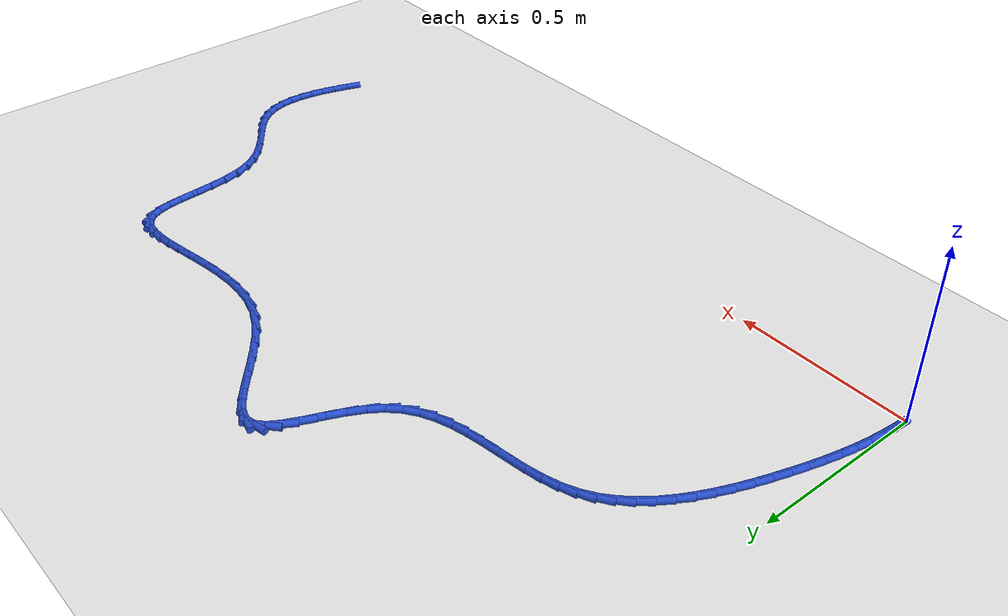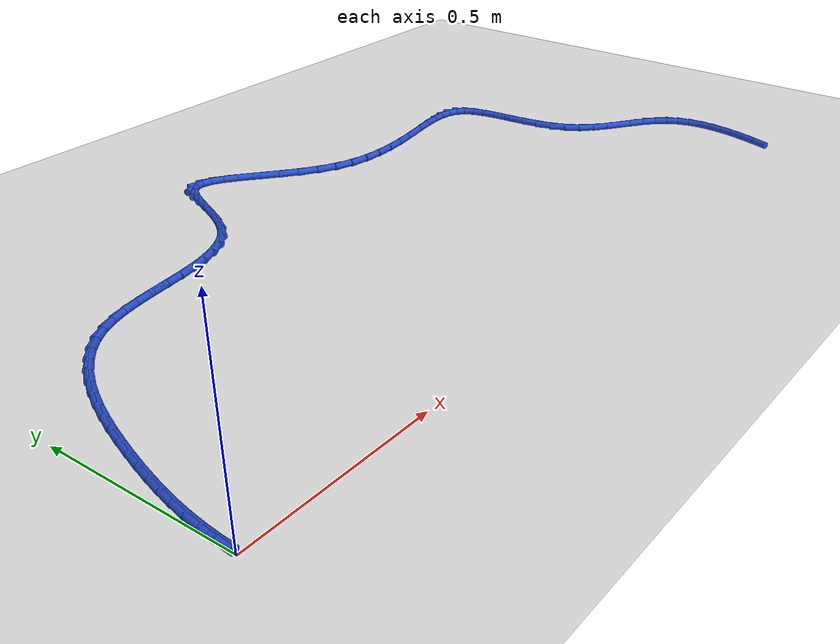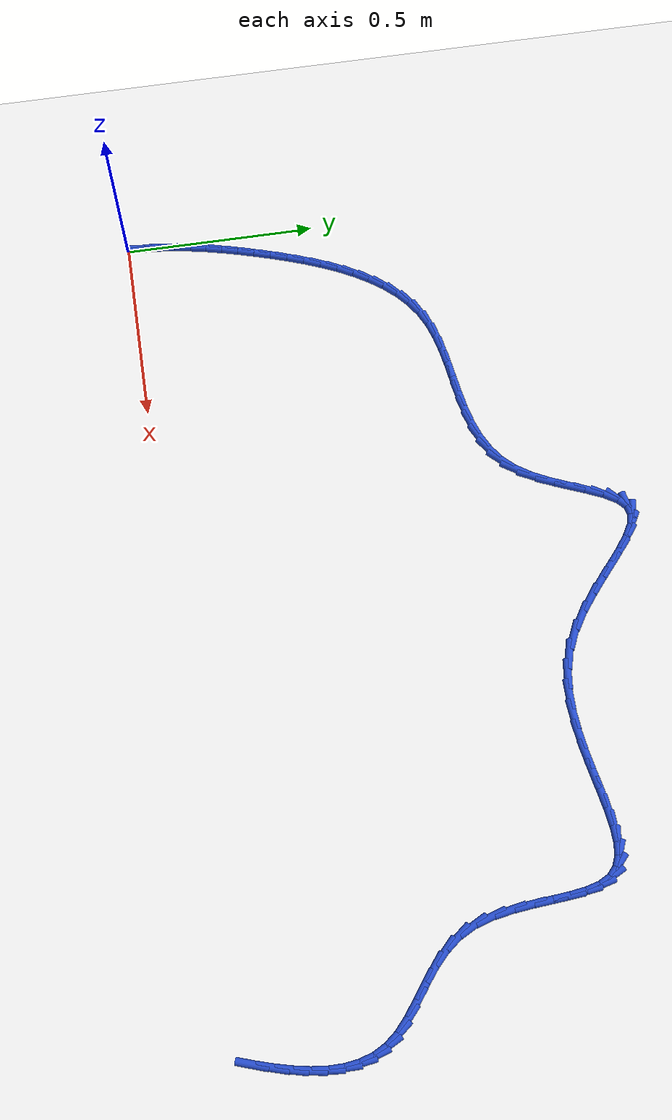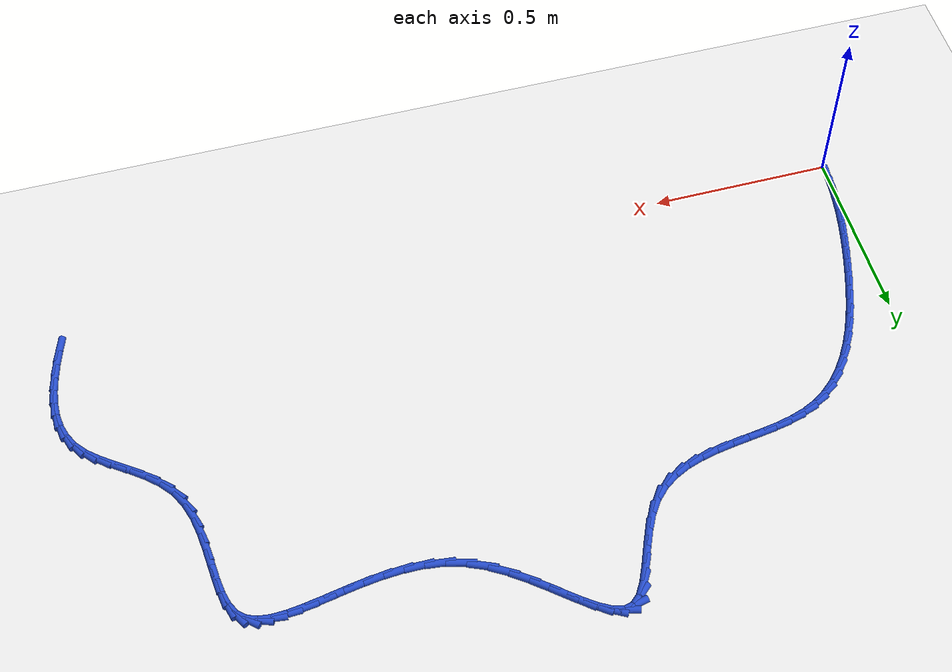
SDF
<sdf version="1.6">
 <world name="default">
  <model name="ground_plane">
   <static>1</static>
   <link name="link">
    <collision name="collision">
     <geometry><plane><normal>0 0 1</normal><size>100 100</size></plane></geometry>
     <surface><friction><ode><mu>100</mu><mu2>50</mu2></ode></friction></surface>
    </collision>
    <visual name="visual">
     <cast_shadows>0</cast_shadows>
     <geometry><plane><normal>0 0 1</normal><size>100 100</size></plane></geometry>
     <material>
      <script><uri>file://media/materials/scripts/gazebo.material</uri><name>Gazebo/WhiteGlow</name></script>
     </material>
    </visual>
   </link>
  </model>
  <model name="line">
   <link name="link_1">
    <pose>0.001882932050623325 0.04342792343694653 0.01 0 1.57 1.4830346264562566</pose>
    <collision name="collision">
     <geometry><cylinder><radius>0.01</radius><length>0.08</length></cylinder></geometry>
    </collision>
    <visual name="visual">
     <material>
      <script><name>Gazebo/Blue</name><uri>file://media/materials/scripts/gazebo.material</uri></script>
     </material>
     <geometry><cylinder><radius>0.01</radius><length>0.08</length></cylinder></geometry>
    </visual>
   </link>
   <link name="link_2">
    <pose>0.005660563875606679 0.08636155212213174 0.01 0 1.57 1.441057252625302</pose>
    <collision name="collision">
     <geometry><cylinder><radius>0.01</radius><length>0.08</length></cylinder></geometry>
    </collision>
    <visual name="visual">
     <material>
      <script><name>Gazebo/Blue</name><uri>file://media/materials/scripts/gazebo.material</uri></script>
     </material>
     <geometry><cylinder><radius>0.01</radius><length>0.08</length></cylinder></geometry>
    </visual>
   </link>
   <link name="link_3">
    <pose>0.01121829659993773 0.12895870108899557 0.01 0 1.57 1.4021291156189073</pose>
    <collision name="collision">
     <geometry><cylinder><radius>0.01</radius><length>0.08</length></cylinder></geometry>
    </collision>
    <visual name="visual">
     <material>
      <script><name>Gazebo/Blue</name><uri>file://media/materials/scripts/gazebo.material</uri></script>
     </material>
     <geometry><cylinder><radius>0.01</radius><length>0.08</length></cylinder></geometry>
    </visual>
   </link>
   <link name="link_4">
    <pose>0.018441531348604167 0.17137718537097799 0.01 0 1.57 1.3667282829001004</pose>
    <collision name="collision">
     <geometry><cylinder><radius>0.01</radius><length>0.08</length></cylinder></geometry>
    </collision>
    <visual name="visual">
     <material>
      <script><name>Gazebo/Blue</name><uri>file://media/materials/scripts/gazebo.material</uri></script>
     </material>
     <geometry><cylinder><radius>0.01</radius><length>0.08</length></cylinder></geometry>
    </visual>
   </link>
   <link name="link_5">
    <pose>0.02721566924659366 0.21377482000151873 0.01 0 1.57 1.3352038154695058</pose>
    <collision name="collision">
     <geometry><cylinder><radius>0.01</radius><length>0.08</length></cylinder></geometry>
    </collision>
    <visual name="visual">
     <material>
      <script><name>Gazebo/Blue</name><uri>file://media/materials/scripts/gazebo.material</uri></script>
     </material>
     <geometry><cylinder><radius>0.01</radius><length>0.08</length></cylinder></geometry>
    </visual>
   </link>
   <link name="link_6">
    <pose>0.037426111418893904 0.2563094200140577 0.01 0 1.57 1.307776329983313</pose>
    <collision name="collision">
     <geometry><cylinder><radius>0.01</radius><length>0.08</length></cylinder></geometry>
    </collision>
    <visual name="visual">
     <material>
      <script><name>Gazebo/Blue</name><uri>file://media/materials/scripts/gazebo.material</uri></script>
     </material>
     <geometry><cylinder><radius>0.01</radius><length>0.08</length></cylinder></geometry>
    </visual>
   </link>
   <link name="link_7">
    <pose>0.04895825899049258 0.2991388004420349 0.01 0 1.57 1.2845479591983004</pose>
    <collision name="collision">
     <geometry><cylinder><radius>0.01</radius><length>0.08</length></cylinder></geometry>
    </collision>
    <visual name="visual">
     <material>
      <script><name>Gazebo/Blue</name><uri>file://media/materials/scripts/gazebo.material</uri></script>
     </material>
     <geometry><cylinder><radius>0.01</radius><length>0.08</length></cylinder></geometry>
    </visual>
   </link>
   <link name="link_8">
    <pose>0.06169751308637738 0.3424207763188901 0.01 0 1.57 1.2651666941944375</pose>
    <collision name="collision">
     <geometry><cylinder><radius>0.01</radius><length>0.08</length></cylinder></geometry>
    </collision>
    <visual name="visual">
     <material>
      <script><name>Gazebo/Blue</name><uri>file://media/materials/scripts/gazebo.material</uri></script>
     </material>
     <geometry><cylinder><radius>0.01</radius><length>0.08</length></cylinder></geometry>
    </visual>
   </link>
   <link name="link_9">
    <pose>0.07553934760905774 0.3862913273354509 0.01 0 1.57 1.2435836410821643</pose>
    <collision name="collision">
     <geometry><cylinder><radius>0.01</radius><length>0.08</length></cylinder></geometry>
    </collision>
    <visual name="visual">
     <material>
      <script><name>Gazebo/Blue</name><uri>file://media/materials/scripts/gazebo.material</uri></script>
     </material>
     <geometry><cylinder><radius>0.01</radius><length>0.08</length></cylinder></geometry>
    </visual>
   </link>
   <link name="link_10">
    <pose>0.09054993458861518 0.4305164009753659 0.01 0 1.57 1.2145333849777742</pose>
    <collision name="collision">
     <geometry><cylinder><radius>0.01</radius><length>0.08</length></cylinder></geometry>
    </collision>
    <visual name="visual">
     <material>
      <script><name>Gazebo/Blue</name><uri>file://media/materials/scripts/gazebo.material</uri></script>
     </material>
     <geometry><cylinder><radius>0.01</radius><length>0.08</length></cylinder></geometry>
    </visual>
   </link>
   <link name="link_11">
    <pose>0.1069378821469445 0.47455317776516853 0.01 0 1.57 1.1772221785938286</pose>
    <collision name="collision">
     <geometry><cylinder><radius>0.01</radius><length>0.08</length></cylinder></geometry>
    </collision>
    <visual name="visual">
     <material>
      <script><name>Gazebo/Blue</name><uri>file://media/materials/scripts/gazebo.material</uri></script>
     </material>
     <geometry><cylinder><radius>0.01</radius><length>0.08</length></cylinder></geometry>
    </visual>
   </link>
   <link name="link_12">
    <pose>0.12491616066155674 0.5178493819175072 0.01 0 1.57 1.130655671403392</pose>
    <collision name="collision">
     <geometry><cylinder><radius>0.01</radius><length>0.08</length></cylinder></geometry>
    </collision>
    <visual name="visual">
     <material>
      <script><name>Gazebo/Blue</name><uri>file://media/materials/scripts/gazebo.material</uri></script>
     </material>
     <geometry><cylinder><radius>0.01</radius><length>0.08</length></cylinder></geometry>
    </visual>
   </link>
   <link name="link_13">
    <pose>0.14469774050996284 0.5598527376450301 0.01 0 1.57 1.0734984498851592</pose>
    <collision name="collision">
     <geometry><cylinder><radius>0.01</radius><length>0.08</length></cylinder></geometry>
    </collision>
    <visual name="visual">
     <material>
      <script><name>Gazebo/Blue</name><uri>file://media/materials/scripts/gazebo.material</uri></script>
     </material>
     <geometry><cylinder><radius>0.01</radius><length>0.08</length></cylinder></geometry>
    </visual>
   </link>
   <link name="link_14">
    <pose>0.1664955920696738 0.6000109691603858 0.01 0 1.57 1.0041147316822503</pose>
    <collision name="collision">
     <geometry><cylinder><radius>0.01</radius><length>0.08</length></cylinder></geometry>
    </collision>
    <visual name="visual">
     <material>
      <script><name>Gazebo/Blue</name><uri>file://media/materials/scripts/gazebo.material</uri></script>
     </material>
     <geometry><cylinder><radius>0.01</radius><length>0.08</length></cylinder></geometry>
    </visual>
   </link>
   <link name="link_15">
    <pose>0.19052268571820058 0.6377718006762223 0.01 0 1.57 0.920692338920106</pose>
    <collision name="collision">
     <geometry><cylinder><radius>0.01</radius><length>0.08</length></cylinder></geometry>
    </collision>
    <visual name="visual">
     <material>
      <script><name>Gazebo/Blue</name><uri>file://media/materials/scripts/gazebo.material</uri></script>
     </material>
     <geometry><cylinder><radius>0.01</radius><length>0.08</length></cylinder></geometry>
    </visual>
   </link>
   <link name="link_16">
    <pose>0.21699199183305423 0.6725829564051883 0.01 0 1.57 0.8215330431041581</pose>
    <collision name="collision">
     <geometry><cylinder><radius>0.01</radius><length>0.08</length></cylinder></geometry>
    </collision>
    <visual name="visual">
     <material>
      <script><name>Gazebo/Blue</name><uri>file://media/materials/scripts/gazebo.material</uri></script>
     </material>
     <geometry><cylinder><radius>0.01</radius><length>0.08</length></cylinder></geometry>
    </visual>
   </link>
   <link name="link_17">
    <pose>0.24611648079174578 0.7038921605599324 0.01 0 1.57 0.7056041369689432</pose>
    <collision name="collision">
     <geometry><cylinder><radius>0.01</radius><length>0.08</length></cylinder></geometry>
    </collision>
    <visual name="visual">
     <material>
      <script><name>Gazebo/Blue</name><uri>file://media/materials/scripts/gazebo.material</uri></script>
     </material>
     <geometry><cylinder><radius>0.01</radius><length>0.08</length></cylinder></geometry>
    </visual>
   </link>
   <link name="link_18">
    <pose>0.278109122971786 0.7311471373531022 0.01 0 1.57 0.5733734565252111</pose>
    <collision name="collision">
     <geometry><cylinder><radius>0.01</radius><length>0.08</length></cylinder></geometry>
    </collision>
    <visual name="visual">
     <material>
      <script><name>Gazebo/Blue</name><uri>file://media/materials/scripts/gazebo.material</uri></script>
     </material>
     <geometry><cylinder><radius>0.01</radius><length>0.08</length></cylinder></geometry>
    </visual>
   </link>
   <link name="link_19">
    <pose>0.313182888750686 0.7537956109973463 0.01 0 1.57 0.43009340562347703</pose>
    <collision name="collision">
     <geometry><cylinder><radius>0.01</radius><length>0.08</length></cylinder></geometry>
    </collision>
    <visual name="visual">
     <material>
      <script><name>Gazebo/Blue</name><uri>file://media/materials/scripts/gazebo.material</uri></script>
     </material>
     <geometry><cylinder><radius>0.01</radius><length>0.08</length></cylinder></geometry>
    </visual>
   </link>
   <link name="link_20">
    <pose>0.35150315892209255 0.7713744248897481 0.01 0 1.57 0.3066090634197765</pose>
    <collision name="collision">
     <geometry><cylinder><radius>0.01</radius><length>0.08</length></cylinder></geometry>
    </collision>
    <visual name="visual">
     <material>
      <script><name>Gazebo/Blue</name><uri>file://media/materials/scripts/gazebo.material</uri></script>
     </material>
     <geometry><cylinder><radius>0.01</radius><length>0.08</length></cylinder></geometry>
    </visual>
   </link>
   <link name="link_21">
    <pose>0.39270266857234926 0.7844178875694007 0.01 0 1.57 0.21929909739808087</pose>
    <collision name="collision">
     <geometry><cylinder><radius>0.01</radius><length>0.08</length></cylinder></geometry>
    </collision>
    <visual name="visual">
     <material>
      <script><name>Gazebo/Blue</name><uri>file://media/materials/scripts/gazebo.material</uri></script>
     </material>
     <geometry><cylinder><radius>0.01</radius><length>0.08</length></cylinder></geometry>
    </visual>
   </link>
   <link name="link_22">
    <pose>0.43608003815203483 0.7940859912109586 0.01 0 1.57 0.16487985646915165</pose>
    <collision name="collision">
     <geometry><cylinder><radius>0.01</radius><length>0.08</length></cylinder></geometry>
    </collision>
    <visual name="visual">
     <material>
      <script><name>Gazebo/Blue</name><uri>file://media/materials/scripts/gazebo.material</uri></script>
     </material>
     <geometry><cylinder><radius>0.01</radius><length>0.08</length></cylinder></geometry>
    </visual>
   </link>
   <link name="link_23">
    <pose>0.4809287323590615 0.8015483829689165 0.01 0 1.57 0.13996535813844757</pose>
    <collision name="collision">
     <geometry><cylinder><radius>0.01</radius><length>0.08</length></cylinder></geometry>
    </collision>
    <visual name="visual">
     <material>
      <script><name>Gazebo/Blue</name><uri>file://media/materials/scripts/gazebo.material</uri></script>
     </material>
     <geometry><cylinder><radius>0.01</radius><length>0.08</length></cylinder></geometry>
    </visual>
   </link>
   <link name="link_24">
    <pose>0.5265422158913406 0.8079747099977692 0.01 0 1.57 0.1426560413136113</pose>
    <collision name="collision">
     <geometry><cylinder><radius>0.01</radius><length>0.08</length></cylinder></geometry>
    </collision>
    <visual name="visual">
     <material>
      <script><name>Gazebo/Blue</name><uri>file://media/materials/scripts/gazebo.material</uri></script>
     </material>
     <geometry><cylinder><radius>0.01</radius><length>0.08</length></cylinder></geometry>
    </visual>
   </link>
   <link name="link_25">
    <pose>0.5722139534467843 0.8145346194520118 0.01 0 1.57 0.1729015719749586</pose>
    <collision name="collision">
     <geometry><cylinder><radius>0.01</radius><length>0.08</length></cylinder></geometry>
    </collision>
    <visual name="visual">
     <material>
      <script><name>Gazebo/Blue</name><uri>file://media/materials/scripts/gazebo.material</uri></script>
     </material>
     <geometry><cylinder><radius>0.01</radius><length>0.08</length></cylinder></geometry>
    </visual>
   </link>
   <link name="link_26">
    <pose>0.6172374097233042 0.8223977584861387 0.01 0 1.57 0.2324147633976279</pose>
    <collision name="collision">
     <geometry><cylinder><radius>0.01</radius><length>0.08</length></cylinder></geometry>
    </collision>
    <visual name="visual">
     <material>
      <script><name>Gazebo/Blue</name><uri>file://media/materials/scripts/gazebo.material</uri></script>
     </material>
     <geometry><cylinder><radius>0.01</radius><length>0.08</length></cylinder></geometry>
    </visual>
   </link>
   <link name="link_27">
    <pose>0.6609060494188117 0.8327337742546448 0.01 0 1.57 0.3241160413838412</pose>
    <collision name="collision">
     <geometry><cylinder><radius>0.01</radius><length>0.08</length></cylinder></geometry>
    </collision>
    <visual name="visual">
     <material>
      <script><name>Gazebo/Blue</name><uri>file://media/materials/scripts/gazebo.material</uri></script>
     </material>
     <geometry><cylinder><radius>0.01</radius><length>0.08</length></cylinder></geometry>
    </visual>
   </link>
   <link name="link_28">
    <pose>0.7025133372312192 0.8467123139120253 0.01 0 1.57 0.45060817402634884</pose>
    <collision name="collision">
     <geometry><cylinder><radius>0.01</radius><length>0.08</length></cylinder></geometry>
    </collision>
    <visual name="visual">
     <material>
      <script><name>Gazebo/Blue</name><uri>file://media/materials/scripts/gazebo.material</uri></script>
     </material>
     <geometry><cylinder><radius>0.01</radius><length>0.08</length></cylinder></geometry>
    </visual>
   </link>
   <link name="link_29">
    <pose>0.7413527378584385 0.865503024612775 0.01 0 1.57 0.6110493484713455</pose>
    <collision name="collision">
     <geometry><cylinder><radius>0.01</radius><length>0.08</length></cylinder></geometry>
    </collision>
    <visual name="visual">
     <material>
      <script><name>Gazebo/Blue</name><uri>file://media/materials/scripts/gazebo.material</uri></script>
     </material>
     <geometry><cylinder><radius>0.01</radius><length>0.08</length></cylinder></geometry>
    </visual>
   </link>
   <link name="link_30">
    <pose>0.7767177159983806 0.8902755535113882 0.01 0 1.57 0.7971231399385907</pose>
    <collision name="collision">
     <geometry><cylinder><radius>0.01</radius><length>0.08</length></cylinder></geometry>
    </collision>
    <visual name="visual">
     <material>
      <script><name>Gazebo/Blue</name><uri>file://media/materials/scripts/gazebo.material</uri></script>
     </material>
     <geometry><cylinder><radius>0.01</radius><length>0.08</length></cylinder></geometry>
    </visual>
   </link>
   <link name="link_31">
    <pose>0.8079017363489582 0.9221995477623603 0.01 0 1.57 0.9794834374040592</pose>
    <collision name="collision">
     <geometry><cylinder><radius>0.01</radius><length>0.08</length></cylinder></geometry>
    </collision>
    <visual name="visual">
     <material>
      <script><name>Gazebo/Blue</name><uri>file://media/materials/scripts/gazebo.material</uri></script>
     </material>
     <geometry><cylinder><radius>0.01</radius><length>0.08</length></cylinder></geometry>
    </visual>
   </link>
   <link name="link_32">
    <pose>0.8344759133729378 0.9617763284519439 0.01 0 1.57 1.0992245112673753</pose>
    <collision name="collision">
     <geometry><cylinder><radius>0.01</radius><length>0.08</length></cylinder></geometry>
    </collision>
    <visual name="visual">
     <material>
      <script><name>Gazebo/Blue</name><uri>file://media/materials/scripts/gazebo.material</uri></script>
     </material>
     <geometry><cylinder><radius>0.01</radius><length>0.08</length></cylinder></geometry>
    </visual>
   </link>
   <link name="link_33">
    <pose>0.8572704856351552 1.0064764002671658 0.01 0 1.57 1.1604379181783198</pose>
    <collision name="collision">
     <geometry><cylinder><radius>0.01</radius><length>0.08</length></cylinder></geometry>
    </collision>
    <visual name="visual">
     <material>
      <script><name>Gazebo/Blue</name><uri>file://media/materials/scripts/gazebo.material</uri></script>
     </material>
     <geometry><cylinder><radius>0.01</radius><length>0.08</length></cylinder></geometry>
    </visual>
   </link>
   <link name="link_34">
    <pose>0.877472439163415 1.0529115470911425 0.01 0 1.57 1.1733975695237424</pose>
    <collision name="collision">
     <geometry><cylinder><radius>0.01</radius><length>0.08</length></cylinder></geometry>
    </collision>
    <visual name="visual">
     <material>
      <script><name>Gazebo/Blue</name><uri>file://media/materials/scripts/gazebo.material</uri></script>
     </material>
     <geometry><cylinder><radius>0.01</radius><length>0.08</length></cylinder></geometry>
    </visual>
   </link>
   <link name="link_35">
    <pose>0.8962687830290101 1.0976934973393997 0.01 0 1.57 1.133504327110469</pose>
    <collision name="collision">
     <geometry><cylinder><radius>0.01</radius><length>0.08</length></cylinder></geometry>
    </collision>
    <visual name="visual">
     <material>
      <script><name>Gazebo/Blue</name><uri>file://media/materials/scripts/gazebo.material</uri></script>
     </material>
     <geometry><cylinder><radius>0.01</radius><length>0.08</length></cylinder></geometry>
    </visual>
   </link>
   <link name="link_36">
    <pose>0.9148465263032342 1.1374339794274633 0.01 0 1.57 1.012726847234206</pose>
    <collision name="collision">
     <geometry><cylinder><radius>0.01</radius><length>0.08</length></cylinder></geometry>
    </collision>
    <visual name="visual">
     <material>
      <script><name>Gazebo/Blue</name><uri>file://media/materials/scripts/gazebo.material</uri></script>
     </material>
     <geometry><cylinder><radius>0.01</radius><length>0.08</length></cylinder></geometry>
    </visual>
   </link>
   <link name="link_37">
    <pose>0.9343926780573804 1.1687447217708578 0.01 0 1.57 0.7318304570410479</pose>
    <collision name="collision">
     <geometry><cylinder><radius>0.01</radius><length>0.08</length></cylinder></geometry>
    </collision>
    <visual name="visual">
     <material>
      <script><name>Gazebo/Blue</name><uri>file://media/materials/scripts/gazebo.material</uri></script>
     </material>
     <geometry><cylinder><radius>0.01</radius><length>0.08</length></cylinder></geometry>
    </visual>
   </link>
   <link name="link_38">
    <pose>0.9560942400626891 1.1882374851318345 0.01 0 1.57 0.21242757763754652</pose>
    <collision name="collision">
     <geometry><cylinder><radius>0.01</radius><length>0.08</length></cylinder></geometry>
    </collision>
    <visual name="visual">
     <material>
      <script><name>Gazebo/Blue</name><uri>file://media/materials/scripts/gazebo.material</uri></script>
     </material>
     <geometry><cylinder><radius>0.01</radius><length>0.08</length></cylinder></geometry>
    </visual>
   </link>
   <link name="link_39">
    <pose>0.9808982636227594 1.1935872572387711 0.01 0 1.57 -0.25374595940826594</pose>
    <collision name="collision">
     <geometry><cylinder><radius>0.01</radius><length>0.08</length></cylinder></geometry>
    </collision>
    <visual name="visual">
     <material>
      <script><name>Gazebo/Blue</name><uri>file://media/materials/scripts/gazebo.material</uri></script>
     </material>
     <geometry><cylinder><radius>0.01</radius><length>0.08</length></cylinder></geometry>
    </visual>
   </link>
   <link name="link_40">
    <pose>1.0088803375806383 1.1863304993863466 0.01 0 1.57 -0.5121843927509631</pose>
    <collision name="collision">
     <geometry><cylinder><radius>0.01</radius><length>0.08</length></cylinder></geometry>
    </collision>
    <visual name="visual">
     <material>
      <script><name>Gazebo/Blue</name><uri>file://media/materials/scripts/gazebo.material</uri></script>
     </material>
     <geometry><cylinder><radius>0.01</radius><length>0.08</length></cylinder></geometry>
    </visual>
   </link>
   <link name="link_41">
    <pose>1.0399182711945005 1.1688800395212853 0.01 0 1.57 -0.6388245669623184</pose>
    <collision name="collision">
     <geometry><cylinder><radius>0.01</radius><length>0.08</length></cylinder></geometry>
    </collision>
    <visual name="visual">
     <material>
      <script><name>Gazebo/Blue</name><uri>file://media/materials/scripts/gazebo.material</uri></script>
     </material>
     <geometry><cylinder><radius>0.01</radius><length>0.08</length></cylinder></geometry>
    </visual>
   </link>
   <link name="link_42">
    <pose>1.0738898737225218 1.1436487055903097 0.01 0 1.57 -0.6938843102755509</pose>
    <collision name="collision">
     <geometry><cylinder><radius>0.01</radius><length>0.08</length></cylinder></geometry>
    </collision>
    <visual name="visual">
     <material>
      <script><name>Gazebo/Blue</name><uri>file://media/materials/scripts/gazebo.material</uri></script>
     </material>
     <geometry><cylinder><radius>0.01</radius><length>0.08</length></cylinder></geometry>
    </visual>
   </link>
   <link name="link_43">
    <pose>1.1106729544228775 1.1130493255401448 0.01 0 1.57 -0.7045394406214696</pose>
    <collision name="collision">
     <geometry><cylinder><radius>0.01</radius><length>0.08</length></cylinder></geometry>
    </collision>
    <visual name="visual">
     <material>
      <script><name>Gazebo/Blue</name><uri>file://media/materials/scripts/gazebo.material</uri></script>
     </material>
     <geometry><cylinder><radius>0.01</radius><length>0.08</length></cylinder></geometry>
    </visual>
   </link>
   <link name="link_44">
    <pose>1.1501453225537421 1.079494727317513 0.01 0 1.57 -0.6814551570017929</pose>
    <collision name="collision">
     <geometry><cylinder><radius>0.01</radius><length>0.08</length></cylinder></geometry>
    </collision>
    <visual name="visual">
     <material>
      <script><name>Gazebo/Blue</name><uri>file://media/materials/scripts/gazebo.material</uri></script>
     </material>
     <geometry><cylinder><radius>0.01</radius><length>0.08</length></cylinder></geometry>
    </visual>
   </link>
   <link name="link_45">
    <pose>1.1921847873732925 1.0453977388691387 0.01 0 1.57 -0.6269453539872679</pose>
    <collision name="collision">
     <geometry><cylinder><radius>0.01</radius><length>0.08</length></cylinder></geometry>
    </collision>
    <visual name="visual">
     <material>
      <script><name>Gazebo/Blue</name><uri>file://media/materials/scripts/gazebo.material</uri></script>
     </material>
     <geometry><cylinder><radius>0.01</radius><length>0.08</length></cylinder></geometry>
    </visual>
   </link>
   <link name="link_46">
    <pose>1.2366691581397022 1.0131711881417453 0.01 0 1.57 -0.5382021097787669</pose>
    <collision name="collision">
     <geometry><cylinder><radius>0.01</radius><length>0.08</length></cylinder></geometry>
    </collision>
    <visual name="visual">
     <material>
      <script><name>Gazebo/Blue</name><uri>file://media/materials/scripts/gazebo.material</uri></script>
     </material>
     <geometry><cylinder><radius>0.01</radius><length>0.08</length></cylinder></geometry>
    </visual>
   </link>
   <link name="link_47">
    <pose>1.283476244111149 0.9852279030820568 0.01 0 1.57 -0.4091280359965647</pose>
    <collision name="collision">
     <geometry><cylinder><radius>0.01</radius><length>0.08</length></cylinder></geometry>
    </collision>
    <visual name="visual">
     <material>
      <script><name>Gazebo/Blue</name><uri>file://media/materials/scripts/gazebo.material</uri></script>
     </material>
     <geometry><cylinder><radius>0.01</radius><length>0.08</length></cylinder></geometry>
    </visual>
   </link>
   <link name="link_48">
    <pose>1.3324835380963123 0.9639785895958195 0.01 0 1.57 -0.25166430734247897</pose>
    <collision name="collision">
     <geometry><cylinder><radius>0.01</radius><length>0.08</length></cylinder></geometry>
    </collision>
    <visual name="visual">
     <material>
      <script><name>Gazebo/Blue</name><uri>file://media/materials/scripts/gazebo.material</uri></script>
     </material>
     <geometry><cylinder><radius>0.01</radius><length>0.08</length></cylinder></geometry>
    </visual>
   </link>
   <link name="link_49">
    <pose>1.383426335216906 0.9508804070509274 0.01 0 1.57 -0.11327274444445434</pose>
    <collision name="collision">
     <geometry><cylinder><radius>0.01</radius><length>0.08</length></cylinder></geometry>
    </collision>
    <visual name="visual">
     <material>
      <script><name>Gazebo/Blue</name><uri>file://media/materials/scripts/gazebo.material</uri></script>
     </material>
     <geometry><cylinder><radius>0.01</radius><length>0.08</length></cylinder></geometry>
    </visual>
   </link>
   <link name="link_50">
    <pose>1.4356740093759344 0.9449367272842448 0.01 0 1.57 -0.0033122318061383446</pose>
    <collision name="collision">
     <geometry><cylinder><radius>0.01</radius><length>0.08</length></cylinder></geometry>
    </collision>
    <visual name="visual">
     <material>
      <script><name>Gazebo/Blue</name><uri>file://media/materials/scripts/gazebo.material</uri></script>
     </material>
     <geometry><cylinder><radius>0.01</radius><length>0.08</length></cylinder></geometry>
    </visual>
   </link>
   <link name="link_51">
    <pose>1.4885378811504482 0.9447616292464307 0.01 0 1.57 0.07953355903179206</pose>
    <collision name="collision">
     <geometry><cylinder><radius>0.01</radius><length>0.08</length></cylinder></geometry>
    </collision>
    <visual name="visual">
     <material>
      <script><name>Gazebo/Blue</name><uri>file://media/materials/scripts/gazebo.material</uri></script>
     </material>
     <geometry><cylinder><radius>0.01</radius><length>0.08</length></cylinder></geometry>
    </visual>
   </link>
   <link name="link_52">
    <pose>1.5413292711175002 0.9489691918881434 0.01 0 1.57 0.13758893823305643</pose>
    <collision name="collision">
     <geometry><cylinder><radius>0.01</radius><length>0.08</length></cylinder></geometry>
    </collision>
    <visual name="visual">
     <material>
      <script><name>Gazebo/Blue</name><uri>file://media/materials/scripts/gazebo.material</uri></script>
     </material>
     <geometry><cylinder><radius>0.01</radius><length>0.08</length></cylinder></geometry>
    </visual>
   </link>
   <link name="link_53">
    <pose>1.5933594998541412 0.9561734941600414 0.01 0 1.57 0.1725464159879727</pose>
    <collision name="collision">
     <geometry><cylinder><radius>0.01</radius><length>0.08</length></cylinder></geometry>
    </collision>
    <visual name="visual">
     <material>
      <script><name>Gazebo/Blue</name><uri>file://media/materials/scripts/gazebo.material</uri></script>
     </material>
     <geometry><cylinder><radius>0.01</radius><length>0.08</length></cylinder></geometry>
    </visual>
   </link>
   <link name="link_54">
    <pose>1.6439398879374234 0.9649886150127829 0.01 0 1.57 0.1844936514445107</pose>
    <collision name="collision">
     <geometry><cylinder><radius>0.01</radius><length>0.08</length></cylinder></geometry>
    </collision>
    <visual name="visual">
     <material>
      <script><name>Gazebo/Blue</name><uri>file://media/materials/scripts/gazebo.material</uri></script>
     </material>
     <geometry><cylinder><radius>0.01</radius><length>0.08</length></cylinder></geometry>
    </visual>
   </link>
   <link name="link_55">
    <pose>1.6923817559443992 0.9740286333970268 0.01 0 1.57 0.171041702690649</pose>
    <collision name="collision">
     <geometry><cylinder><radius>0.01</radius><length>0.08</length></cylinder></geometry>
    </collision>
    <visual name="visual">
     <material>
      <script><name>Gazebo/Blue</name><uri>file://media/materials/scripts/gazebo.material</uri></script>
     </material>
     <geometry><cylinder><radius>0.01</radius><length>0.08</length></cylinder></geometry>
    </visual>
   </link>
   <link name="link_56">
    <pose>1.7379964244521195 0.9819076282634314 0.01 0 1.57 0.12598485674907975</pose>
    <collision name="collision">
     <geometry><cylinder><radius>0.01</radius><length>0.08</length></cylinder></geometry>
    </collision>
    <visual name="visual">
     <material>
      <script><name>Gazebo/Blue</name><uri>file://media/materials/scripts/gazebo.material</uri></script>
     </material>
     <geometry><cylinder><radius>0.01</radius><length>0.08</length></cylinder></geometry>
    </visual>
   </link>
   <link name="link_57">
    <pose>1.7800952140376363 0.9872396785626548 0.01 0 1.57 0.03690665576698272</pose>
    <collision name="collision">
     <geometry><cylinder><radius>0.01</radius><length>0.08</length></cylinder></geometry>
    </collision>
    <visual name="visual">
     <material>
      <script><name>Gazebo/Blue</name><uri>file://media/materials/scripts/gazebo.material</uri></script>
     </material>
     <geometry><cylinder><radius>0.01</radius><length>0.08</length></cylinder></geometry>
    </visual>
   </link>
   <link name="link_58">
    <pose>1.8179894452780023 0.9886388632453561 0.01 0 1.57 -0.11821842154475909</pose>
    <collision name="collision">
     <geometry><cylinder><radius>0.01</radius><length>0.08</length></cylinder></geometry>
    </collision>
    <visual name="visual">
     <material>
      <script><name>Gazebo/Blue</name><uri>file://media/materials/scripts/gazebo.material</uri></script>
     </material>
     <geometry><cylinder><radius>0.01</radius><length>0.08</length></cylinder></geometry>
    </visual>
   </link>
   <link name="link_59">
    <pose>1.850990438750268 0.9847192612621934 0.01 0 1.57 -0.36966582225953754</pose>
    <collision name="collision">
     <geometry><cylinder><radius>0.01</radius><length>0.08</length></cylinder></geometry>
    </collision>
    <visual name="visual">
     <material>
      <script><name>Gazebo/Blue</name><uri>file://media/materials/scripts/gazebo.material</uri></script>
     </material>
     <geometry><cylinder><radius>0.01</radius><length>0.08</length></cylinder></geometry>
    </visual>
   </link>
   <link name="link_60">
    <pose>1.8784095150314855 0.9740949515638251 0.01 0 1.57 -0.7244268516821153</pose>
    <collision name="collision">
     <geometry><cylinder><radius>0.01</radius><length>0.08</length></cylinder></geometry>
    </collision>
    <visual name="visual">
     <material>
      <script><name>Gazebo/Blue</name><uri>file://media/materials/scripts/gazebo.material</uri></script>
     </material>
     <geometry><cylinder><radius>0.01</radius><length>0.08</length></cylinder></geometry>
    </visual>
   </link>
   <link name="link_61">
    <pose>1.8995579946987076 0.95538001310091 0.01 0 1.57 -1.0883251237576683</pose>
    <collision name="collision">
     <geometry><cylinder><radius>0.01</radius><length>0.08</length></cylinder></geometry>
    </collision>
    <visual name="visual">
     <material>
      <script><name>Gazebo/Blue</name><uri>file://media/materials/scripts/gazebo.material</uri></script>
     </material>
     <geometry><cylinder><radius>0.01</radius><length>0.08</length></cylinder></geometry>
    </visual>
   </link>
   <link name="link_62">
    <pose>1.9140900778833903 0.927634103928793 0.01 0 1.57 -1.317982371278395</pose>
    <collision name="collision">
     <geometry><cylinder><radius>0.01</radius><length>0.08</length></cylinder></geometry>
    </collision>
    <visual name="visual">
     <material>
      <script><name>Gazebo/Blue</name><uri>file://media/materials/scripts/gazebo.material</uri></script>
     </material>
     <geometry><cylinder><radius>0.01</radius><length>0.08</length></cylinder></geometry>
    </visual>
   </link>
   <link name="link_63">
    <pose>1.9232875789545103 0.8920320006201256 0.01 0 1.57 -1.43652399251131</pose>
    <collision name="collision">
     <geometry><cylinder><radius>0.01</radius><length>0.08</length></cylinder></geometry>
    </collision>
    <visual name="visual">
     <material>
      <script><name>Gazebo/Blue</name><uri>file://media/materials/scripts/gazebo.material</uri></script>
     </material>
     <geometry><cylinder><radius>0.01</radius><length>0.08</length></cylinder></geometry>
    </visual>
   </link>
   <link name="link_64">
    <pose>1.9289147618509568 0.8503754329871352 0.01 0 1.57 -1.4877537974794481</pose>
    <collision name="collision">
     <geometry><cylinder><radius>0.01</radius><length>0.08</length></cylinder></geometry>
    </collision>
    <visual name="visual">
     <material>
      <script><name>Gazebo/Blue</name><uri>file://media/materials/scripts/gazebo.material</uri></script>
     </material>
     <geometry><cylinder><radius>0.01</radius><length>0.08</length></cylinder></geometry>
    </visual>
   </link>
   <link name="link_65">
    <pose>1.9327359660613794 0.8044662290205316 0.01 0 1.57 -1.4928001165012166</pose>
    <collision name="collision">
     <geometry><cylinder><radius>0.01</radius><length>0.08</length></cylinder></geometry>
    </collision>
    <visual name="visual">
     <material>
      <script><name>Gazebo/Blue</name><uri>file://media/materials/scripts/gazebo.material</uri></script>
     </material>
     <geometry><cylinder><radius>0.01</radius><length>0.08</length></cylinder></geometry>
    </visual>
   </link>
   <link name="link_66">
    <pose>1.936515531074427 0.7561062167110235 0.01 0 1.57 -1.4589939777825072</pose>
    <collision name="collision">
     <geometry><cylinder><radius>0.01</radius><length>0.08</length></cylinder></geometry>
    </collision>
    <visual name="visual">
     <material>
      <script><name>Gazebo/Blue</name><uri>file://media/materials/scripts/gazebo.material</uri></script>
     </material>
     <geometry><cylinder><radius>0.01</radius><length>0.08</length></cylinder></geometry>
    </visual>
   </link>
   <link name="link_67">
    <pose>1.9420177963787506 0.7070972240493215 0.01 0 1.57 -1.3851198068951116</pose>
    <collision name="collision">
     <geometry><cylinder><radius>0.01</radius><length>0.08</length></cylinder></geometry>
    </collision>
    <visual name="visual">
     <material>
      <script><name>Gazebo/Blue</name><uri>file://media/materials/scripts/gazebo.material</uri></script>
     </material>
     <geometry><cylinder><radius>0.01</radius><length>0.08</length></cylinder></geometry>
    </visual>
   </link>
   <link name="link_68">
    <pose>1.9510071014629975 0.6592410790261337 0.01 0 1.57 -1.2636770756298876</pose>
    <collision name="collision">
     <geometry><cylinder><radius>0.01</radius><length>0.08</length></cylinder></geometry>
    </collision>
    <visual name="visual">
     <material>
      <script><name>Gazebo/Blue</name><uri>file://media/materials/scripts/gazebo.material</uri></script>
     </material>
     <geometry><cylinder><radius>0.01</radius><length>0.08</length></cylinder></geometry>
    </visual>
   </link>
   <link name="link_69">
    <pose>1.9652477858158182 0.6143396096321709 0.01 0 1.57 -1.084621143090298</pose>
    <collision name="collision">
     <geometry><cylinder><radius>0.01</radius><length>0.08</length></cylinder></geometry>
    </collision>
    <visual name="visual">
     <material>
      <script><name>Gazebo/Blue</name><uri>file://media/materials/scripts/gazebo.material</uri></script>
     </material>
     <geometry><cylinder><radius>0.01</radius><length>0.08</length></cylinder></geometry>
    </visual>
   </link>
   <link name="link_70">
    <pose>1.9864753520570495 0.5741727918247984 0.01 0 1.57 -0.8868587768854662</pose>
    <collision name="collision">
     <geometry><cylinder><radius>0.01</radius><length>0.08</length></cylinder></geometry>
    </collision>
    <visual name="visual">
     <material>
      <script><name>Gazebo/Blue</name><uri>file://media/materials/scripts/gazebo.material</uri></script>
     </material>
     <geometry><cylinder><radius>0.01</radius><length>0.08</length></cylinder></geometry>
    </visual>
   </link>
   <link name="link_71">
    <pose>2.0148695110840564 0.5393416520430898 0.01 0 1.57 -0.7421211795983205</pose>
    <collision name="collision">
     <geometry><cylinder><radius>0.01</radius><length>0.08</length></cylinder></geometry>
    </collision>
    <visual name="visual">
     <material>
      <script><name>Gazebo/Blue</name><uri>file://media/materials/scripts/gazebo.material</uri></script>
     </material>
     <geometry><cylinder><radius>0.01</radius><length>0.08</length></cylinder></geometry>
    </visual>
   </link>
   <link name="link_72">
    <pose>2.0482937746032377 0.5086920448216737 0.01 0 1.57 -0.6552302108152249</pose>
    <collision name="collision">
     <geometry><cylinder><radius>0.01</radius><length>0.08</length></cylinder></geometry>
    </collision>
    <visual name="visual">
     <material>
      <script><name>Gazebo/Blue</name><uri>file://media/materials/scripts/gazebo.material</uri></script>
     </material>
     <geometry><cylinder><radius>0.01</radius><length>0.08</length></cylinder></geometry>
    </visual>
   </link>
   <link name="link_73">
    <pose>2.0844231456104207 0.4809269763625156 0.01 0 1.57 -0.622048552058305</pose>
    <collision name="collision">
     <geometry><cylinder><radius>0.01</radius><length>0.08</length></cylinder></geometry>
    </collision>
    <visual name="visual">
     <material>
      <script><name>Gazebo/Blue</name><uri>file://media/materials/scripts/gazebo.material</uri></script>
     </material>
     <geometry><cylinder><radius>0.01</radius><length>0.08</length></cylinder></geometry>
    </visual>
   </link>
   <link name="link_74">
    <pose>2.120932627101432 0.454749452867581 0.01 0 1.57 -0.6428254138603439</pose>
    <collision name="collision">
     <geometry><cylinder><radius>0.01</radius><length>0.08</length></cylinder></geometry>
    </collision>
    <visual name="visual">
     <material>
      <script><name>Gazebo/Blue</name><uri>file://media/materials/scripts/gazebo.material</uri></script>
     </material>
     <geometry><cylinder><radius>0.01</radius><length>0.08</length></cylinder></geometry>
    </visual>
   </link>
   <link name="link_75">
    <pose>2.155497222072098 0.4288624805388369 0.01 0 1.57 -0.7259925722121439</pose>
    <collision name="collision">
     <geometry><cylinder><radius>0.01</radius><length>0.08</length></cylinder></geometry>
    </collision>
    <visual name="visual">
     <material>
      <script><name>Gazebo/Blue</name><uri>file://media/materials/scripts/gazebo.material</uri></script>
     </material>
     <geometry><cylinder><radius>0.01</radius><length>0.08</length></cylinder></geometry>
    </visual>
   </link>
   <link name="link_76">
    <pose>2.185791933518246 0.4019690655782486 0.01 0 1.57 -0.8846344320275756</pose>
    <collision name="collision">
     <geometry><cylinder><radius>0.01</radius><length>0.08</length></cylinder></geometry>
    </collision>
    <visual name="visual">
     <material>
      <script><name>Gazebo/Blue</name><uri>file://media/materials/scripts/gazebo.material</uri></script>
     </material>
     <geometry><cylinder><radius>0.01</radius><length>0.08</length></cylinder></geometry>
    </visual>
   </link>
   <link name="link_77">
    <pose>2.2096401245272124 0.37284697826691876 0.01 0 1.57 -1.0805330866239526</pose>
    <collision name="collision">
     <geometry><cylinder><radius>0.01</radius><length>0.08</length></cylinder></geometry>
    </collision>
    <visual name="visual">
     <material>
      <script><name>Gazebo/Blue</name><uri>file://media/materials/scripts/gazebo.material</uri></script>
     </material>
     <geometry><cylinder><radius>0.01</radius><length>0.08</length></cylinder></geometry>
    </visual>
   </link>
   <link name="link_78">
    <pose>2.226567356146768 0.3411317887277146 0.01 0 1.57 -1.269100141707435</pose>
    <collision name="collision">
     <geometry><cylinder><radius>0.01</radius><length>0.08</length></cylinder></geometry>
    </collision>
    <visual name="visual">
     <material>
      <script><name>Gazebo/Blue</name><uri>file://media/materials/scripts/gazebo.material</uri></script>
     </material>
     <geometry><cylinder><radius>0.01</radius><length>0.08</length></cylinder></geometry>
    </visual>
   </link>
   <link name="link_79">
    <pose>2.23718679689371 0.30700715228658404 0.01 0 1.57 -1.4356248867870882</pose>
    <collision name="collision">
     <geometry><cylinder><radius>0.01</radius><length>0.08</length></cylinder></geometry>
    </collision>
    <visual name="visual">
     <material>
      <script><name>Gazebo/Blue</name><uri>file://media/materials/scripts/gazebo.material</uri></script>
     </material>
     <geometry><cylinder><radius>0.01</radius><length>0.08</length></cylinder></geometry>
    </visual>
   </link>
   <link name="link_80">
    <pose>2.2421292724069573 0.2706656223394508 0.01 0 1.57 1.5680943463863122</pose>
    <collision name="collision">
     <geometry><cylinder><radius>0.01</radius><length>0.08</length></cylinder></geometry>
    </collision>
    <visual name="visual">
     <material>
      <script><name>Gazebo/Blue</name><uri>file://media/materials/scripts/gazebo.material</uri></script>
     </material>
     <geometry><cylinder><radius>0.01</radius><length>0.08</length></cylinder></geometry>
    </visual>
   </link>
   <link name="link_81">
    <pose>2.242025608325431 0.23229975228223762 0.01 0 1.57 1.4588474102108986</pose>
    <collision name="collision">
     <geometry><cylinder><radius>0.01</radius><length>0.08</length></cylinder></geometry>
    </collision>
    <visual name="visual">
     <material>
      <script><name>Gazebo/Blue</name><uri>file://media/materials/scripts/gazebo.material</uri></script>
     </material>
     <geometry><cylinder><radius>0.01</radius><length>0.08</length></cylinder></geometry>
    </visual>
   </link>
   <link name="link_82">
    <pose>2.2375066302880486 0.19210209551086718 0.01 0 1.57 1.374870081161405</pose>
    <collision name="collision">
     <geometry><cylinder><radius>0.01</radius><length>0.08</length></cylinder></geometry>
    </collision>
    <visual name="visual">
     <material>
      <script><name>Gazebo/Blue</name><uri>file://media/materials/scripts/gazebo.material</uri></script>
     </material>
     <geometry><cylinder><radius>0.01</radius><length>0.08</length></cylinder></geometry>
    </visual>
   </link>
   <link name="link_83">
    <pose>2.2292031639337306 0.15026520542126348 0.01 0 1.57 1.3120316218282255</pose>
    <collision name="collision">
     <geometry><cylinder><radius>0.01</radius><length>0.08</length></cylinder></geometry>
    </collision>
    <visual name="visual">
     <material>
      <script><name>Gazebo/Blue</name><uri>file://media/materials/scripts/gazebo.material</uri></script>
     </material>
     <geometry><cylinder><radius>0.01</radius><length>0.08</length></cylinder></geometry>
    </visual>
   </link>
   <link name="link_84">
    <pose>2.217746034901396 0.10698163540934882 0.01 0 1.57 1.266645042887573</pose>
    <collision name="collision">
     <geometry><cylinder><radius>0.01</radius><length>0.08</length></cylinder></geometry>
    </collision>
    <visual name="visual">
     <material>
      <script><name>Gazebo/Blue</name><uri>file://media/materials/scripts/gazebo.material</uri></script>
     </material>
     <geometry><cylinder><radius>0.01</radius><length>0.08</length></cylinder></geometry>
    </visual>
   </link>
   <link name="link_85">
    <pose>2.2037660688299647 0.062443938871047086 0.01 0 1.57 1.2358372292294637</pose>
    <collision name="collision">
     <geometry><cylinder><radius>0.01</radius><length>0.08</length></cylinder></geometry>
    </collision>
    <visual name="visual">
     <material>
      <script><name>Gazebo/Blue</name><uri>file://media/materials/scripts/gazebo.material</uri></script>
     </material>
     <geometry><cylinder><radius>0.01</radius><length>0.08</length></cylinder></geometry>
    </visual>
   </link>
   <link name="link_171">
    <pose>0.0018958806420000009 0.04335057411837569 0.01 0 1.57 1.5270904853842167</pose>
    <collision name="collision">
     <geometry><cylinder><radius>0.01</radius><length>0.08</length></cylinder></geometry>
    </collision>
    <visual name="visual">
     <material>
      <script><name>Gazebo/Blue</name><uri>file://media/materials/scripts/gazebo.material</uri></script>
     </material>
     <geometry><cylinder><radius>0.01</radius><length>0.08</length></cylinder></geometry>
    </visual>
   </link>
  </model>
 </world>
</sdf>
